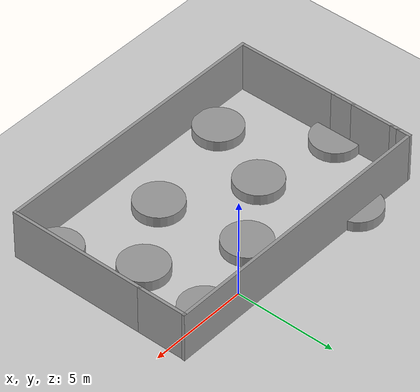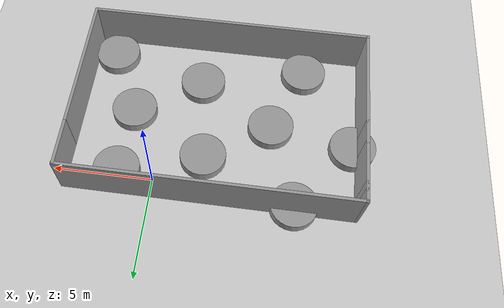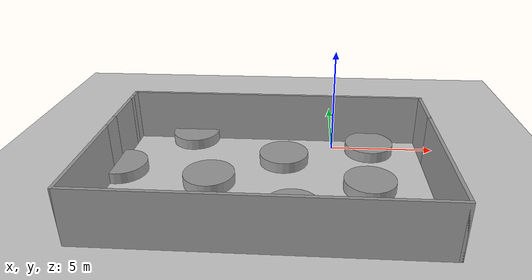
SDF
<sdf version="1.7">
 <world name="default">
  <scene><ambient>0.4 0.4 0.4 1</ambient><background>0.7 0.7 0.7 1</background><shadows>1</shadows></scene>
  <light name="sun" type="directional">
   <pose>0 0 10 0 -0 0</pose>
   <diffuse>0.8 0.8 0.8 1</diffuse>
   <specular>0.2 0.2 0.2 1</specular>
   <attenuation>
    <range>1000</range>
    <constant>0.9</constant>
    <linear>0.01</linear>
    <quadratic>0.001</quadratic>
   </attenuation>
   <direction>-0.5 0.1 -0.9</direction>
   <spot><inner_angle>0</inner_angle><outer_angle>0</outer_angle><falloff>0</falloff></spot>
  </light>
  <model name="ground_plane">
   <static>1</static>
   <link name="link">
    <collision name="collision">
     <geometry><plane><normal>0 0 1</normal><size>100 100</size></plane></geometry>
     <surface><friction><ode><mu>100</mu><mu2>50</mu2></ode></friction></surface>
    </collision>
    <visual name="visual">
     <cast_shadows>0</cast_shadows>
     <geometry><plane><normal>0 0 1</normal><size>100 100</size></plane></geometry>
     <material>
      <script><uri>file://media/materials/scripts/gazebo.material</uri><name>Gazebo/Grey</name></script>
     </material>
    </visual>
   </link>
  </model>
  <physics type="ode">
   <real_time_update_rate>0</real_time_update_rate>
   <max_step_size>0.001</max_step_size>
   <real_time_factor>1</real_time_factor>
   <ode>
    <solver>
     <type>quick</type>
     <iters>150</iters>
     <precon_iters>0</precon_iters>
     <sor>1.4</sor>
     <use_dynamic_moi_rescaling>1</use_dynamic_moi_rescaling>
    </solver>
    <constraints>
     <cfm>1e-05</cfm>
     <erp>0.2</erp>
     <contact_max_correcting_vel>2000</contact_max_correcting_vel>
     <contact_surface_layer>0.01</contact_surface_layer>
    </constraints>
   </ode>
  </physics>
  <gravity>0 0 -9.8</gravity>
  <magnetic_field>6e-06 2.3e-05 -4.2e-05</magnetic_field>
  <atmosphere type="adiabatic"/>
  <spherical_coordinates>
   <surface_model>EARTH_WGS84</surface_model>
   <latitude_deg>0</latitude_deg>
   <longitude_deg>0</longitude_deg>
   <elevation>0</elevation>
   <heading_deg>0</heading_deg>
  </spherical_coordinates>
  <model name="half_square">
   <pose>-2.87363 -3.76482 0 0 -0 0</pose>
   <link name="Wall_0">
    <collision name="Wall_0_Collision">
     <geometry><box><size>14.5 0.15 2.5</size></box></geometry>
     <pose>0 0 1.25 0 -0 0</pose>
    </collision>
    <visual name="Wall_0_Visual">
     <pose>0 0 1.25 0 -0 0</pose>
     <geometry><box><size>14.5 0.15 2.5</size></box></geometry>
     <material>
      <script><uri>file://media/materials/scripts/gazebo.material</uri><name>Gazebo/Grey</name></script>
      <ambient>1 1 1 1</ambient>
     </material>
     <meta><layer>0</layer></meta>
    </visual>
    <pose>-0.010056 -4.61503 0 0 -0 0</pose>
   </link>
   <link name="Wall_11">
    <collision name="Wall_11_Collision">
     <geometry><box><size>2.5 0.15 2.5</size></box></geometry>
     <pose>0 0 1.25 0 -0 0</pose>
    </collision>
    <visual name="Wall_11_Visual">
     <pose>0 0 1.25 0 -0 0</pose>
     <geometry><box><size>2.5 0.15 2.5</size></box></geometry>
     <material>
      <script><uri>file://media/materials/scripts/gazebo.material</uri><name>Gazebo/Grey</name></script>
      <ambient>1 1 1 1</ambient>
     </material>
     <meta><layer>0</layer></meta>
    </visual>
    <pose>7.16494 3.40997 0 0 -0 1.5708</pose>
   </link>
   <link name="Wall_13">
    <collision name="Wall_13_Collision">
     <geometry><box><size>0.730235 0.15 2.5</size></box></geometry>
     <pose>0 0 1.25 0 -0 0</pose>
    </collision>
    <visual name="Wall_13_Visual">
     <pose>0 0 1.25 0 -0 0</pose>
     <geometry><box><size>0.730235 0.15 2.5</size></box></geometry>
     <material>
      <script><uri>file://media/materials/scripts/gazebo.material</uri><name>Gazebo/Grey</name></script>
      <ambient>1 1 1 1</ambient>
     </material>
     <meta><layer>0</layer></meta>
    </visual>
    <pose>-7.18506 4.32491 0 0 -0 1.5708</pose>
   </link>
   <link name="Wall_14">
    <collision name="Wall_14_Collision">
     <geometry><box><size>14.5 0.15 2.5</size></box></geometry>
     <pose>0 0 1.25 0 -0 0</pose>
    </collision>
    <visual name="Wall_14_Visual">
     <pose>0 0 1.25 0 -0 0</pose>
     <geometry><box><size>14.5 0.15 2.5</size></box></geometry>
     <material>
      <script><uri>file://media/materials/scripts/gazebo.material</uri><name>Gazebo/Grey</name></script>
      <ambient>1 1 1 1</ambient>
     </material>
     <meta><layer>0</layer></meta>
    </visual>
    <pose>0.010057 4.61486 0 0 -0 0</pose>
   </link>
   <link name="Wall_2">
    <collision name="Wall_2_Collision">
     <geometry><box><size>5.25 0.15 2.5</size></box></geometry>
     <pose>0 0 1.25 0 -0 0</pose>
    </collision>
    <visual name="Wall_2_Visual">
     <pose>0 0 1.25 0 -0 0</pose>
     <geometry><box><size>5.25 0.15 2.5</size></box></geometry>
     <material>
      <script><uri>file://media/materials/scripts/gazebo.material</uri><name>Gazebo/Grey</name></script>
      <ambient>1 1 1 1</ambient>
     </material>
     <meta><layer>0</layer></meta>
    </visual>
    <pose>-7.18506 -2.06503 0 0 -0 1.5708</pose>
   </link>
   <link name="Wall_4">
    <collision name="Wall_4_Collision">
     <geometry><box><size>7 0.15 2.5</size></box></geometry>
     <pose>0 0 1.25 0 -0 0</pose>
    </collision>
    <visual name="Wall_4_Visual">
     <pose>0 0 1.25 0 -0 0</pose>
     <geometry><box><size>7 0.15 2.5</size></box></geometry>
     <material>
      <script><uri>file://media/materials/scripts/gazebo.material</uri><name>Gazebo/Grey</name></script>
      <ambient>1 1 1 1</ambient>
     </material>
     <meta><layer>0</layer></meta>
    </visual>
    <pose>7.16494 -1.19003 0 0 -0 1.5708</pose>
   </link>
   <link name="Wall_6">
    <collision name="Wall_6_Collision">
     <geometry><box><size>1.25 0.15 2.5</size></box></geometry>
     <pose>0 0 1.25 0 -0 0</pose>
    </collision>
    <visual name="Wall_6_Visual">
     <pose>0 0 1.25 0 -0 0</pose>
     <geometry><box><size>1.25 0.15 2.5</size></box></geometry>
     <material>
      <script><uri>file://media/materials/scripts/gazebo.material</uri><name>Gazebo/Grey</name></script>
      <ambient>1 1 1 1</ambient>
     </material>
     <meta><layer>0</layer></meta>
    </visual>
    <pose>-7.18506 1.03497 0 0 -0 1.5708</pose>
   </link>
   <link name="Wall_8">
    <collision name="Wall_8_Collision">
     <geometry><box><size>2.25 0.15 2.5</size></box></geometry>
     <pose>0 0 1.25 0 -0 0</pose>
    </collision>
    <visual name="Wall_8_Visual">
     <pose>0 0 1.25 0 -0 0</pose>
     <geometry><box><size>2.25 0.15 2.5</size></box></geometry>
     <material>
      <script><uri>file://media/materials/scripts/gazebo.material</uri><name>Gazebo/Grey</name></script>
      <ambient>1 1 1 1</ambient>
     </material>
     <meta><layer>0</layer></meta>
    </visual>
    <pose>-7.18506 2.63497 0 0 -0 1.5708</pose>
   </link>
   <link name="Wall_9">
    <collision name="Wall_9_Collision">
     <geometry><box><size>0.5 0.15 2.5</size></box></geometry>
     <pose>0 0 1.25 0 -0 0</pose>
    </collision>
    <visual name="Wall_9_Visual">
     <pose>0 0 1.25 0 -0 0</pose>
     <geometry><box><size>0.5 0.15 2.5</size></box></geometry>
     <material>
      <script><uri>file://media/materials/scripts/gazebo.material</uri><name>Gazebo/Grey</name></script>
      <ambient>1 1 1 1</ambient>
     </material>
     <meta><layer>0</layer></meta>
    </visual>
    <pose>-7.18506 3.85997 0 0 -0 1.5708</pose>
   </link>
   <static>1</static>
  </model>
  <plugin name="gazebo_occupancy_map" filename="libgazebo_2Dmap_plugin.so">
   <map_resolution>0.02</map_resolution>
   <map_height>0.7</map_height>
   <map_size_x>20</map_size_x>
   <map_size_y>20</map_size_y>
   <init_robot_x>0</init_robot_x>
   <init_robot_y>0</init_robot_y>
  </plugin>
  <model name="circles">
   <link name="link_0">
    <inertial>
     <mass>5.41875</mass>
     <inertia><ixx>2.28677</ixx><ixy>0</ixy><ixz>0</ixz><iyy>2.28677</iyy><iyz>0</iyz><izz>3.67041</izz></inertia>
    </inertial>
    <pose>-4.05525 -3.64745 0 0 -0 0</pose>
    <visual name="visual">
     <geometry><cylinder><radius>1.16392</radius><length>1</length></cylinder></geometry>
     <material>
      <lighting>1</lighting>
      <script><uri>file://media/materials/scripts/gazebo.material</uri><name>Gazebo/Grey</name></script>
      <shader type="pixel"/>
     </material>
    </visual>
    <collision name="collision">
     <geometry><cylinder><radius>1.16392</radius><length>1</length></cylinder></geometry>
     <surface>
      <friction>
       <ode><mu>1</mu><mu2>1</mu2><fdir1>0 0 0</fdir1><slip1>0</slip1><slip2>0</slip2></ode>
       <torsional>
        <coefficient>1</coefficient>
        <patch_radius>0</patch_radius>
        <surface_radius>0</surface_radius>
        <use_patch_radius>1</use_patch_radius>
        <ode><slip>0</slip></ode>
       </torsional>
      </friction>
      <bounce><restitution_coefficient>0</restitution_coefficient><threshold>1e+06</threshold></bounce>
      <contact>
       <collide_without_contact>0</collide_without_contact>
       <collide_without_contact_bitmask>1</collide_without_contact_bitmask>
       <collide_bitmask>1</collide_bitmask>
       <ode>
        <soft_cfm>0</soft_cfm>
        <soft_erp>0.2</soft_erp>
        <kp>1e+13</kp>
        <kd>1</kd>
        <max_vel>0.01</max_vel>
        <min_depth>0</min_depth>
       </ode>
       <bullet>
        <split_impulse>1</split_impulse>
        <split_impulse_penetration_threshold>-0.01</split_impulse_penetration_threshold>
        <soft_cfm>0</soft_cfm>
        <soft_erp>0.2</soft_erp>
        <kp>1e+13</kp>
        <kd>1</kd>
       </bullet>
      </contact>
     </surface>
    </collision>
   </link>
   <link name="link_0_clone">
    <inertial>
     <mass>5.41875</mass>
     <inertia><ixx>2.28677</ixx><ixy>0</ixy><ixz>0</ixz><iyy>2.28677</iyy><iyz>0</iyz><izz>3.67041</izz></inertia>
    </inertial>
    <pose>-6.77005 0.641672 0 0 -0 0</pose>
    <visual name="visual">
     <geometry><cylinder><radius>1.16392</radius><length>1</length></cylinder></geometry>
     <material>
      <lighting>1</lighting>
      <script><uri>file://media/materials/scripts/gazebo.material</uri><name>Gazebo/Grey</name></script>
      <shader type="pixel"/>
     </material>
    </visual>
    <collision name="collision">
     <geometry><cylinder><radius>1.16392</radius><length>1</length></cylinder></geometry>
     <surface>
      <friction>
       <ode><mu>1</mu><mu2>1</mu2><fdir1>0 0 0</fdir1><slip1>0</slip1><slip2>0</slip2></ode>
       <torsional>
        <coefficient>1</coefficient>
        <patch_radius>0</patch_radius>
        <surface_radius>0</surface_radius>
        <use_patch_radius>1</use_patch_radius>
        <ode><slip>0</slip></ode>
       </torsional>
      </friction>
      <bounce><restitution_coefficient>0</restitution_coefficient><threshold>1e+06</threshold></bounce>
      <contact>
       <collide_without_contact>0</collide_without_contact>
       <collide_without_contact_bitmask>1</collide_without_contact_bitmask>
       <collide_bitmask>1</collide_bitmask>
       <ode>
        <soft_cfm>0</soft_cfm>
        <soft_erp>0.2</soft_erp>
        <kp>1e+13</kp>
        <kd>1</kd>
        <max_vel>0.01</max_vel>
        <min_depth>0</min_depth>
       </ode>
       <bullet>
        <split_impulse>1</split_impulse>
        <split_impulse_penetration_threshold>-0.01</split_impulse_penetration_threshold>
        <soft_cfm>0</soft_cfm>
        <soft_erp>0.2</soft_erp>
        <kp>1e+13</kp>
        <kd>1</kd>
       </bullet>
      </contact>
     </surface>
    </collision>
   </link>
   <link name="link_0_clone_0">
    <inertial>
     <mass>5.41875</mass>
     <inertia><ixx>2.28677</ixx><ixy>0</ixy><ixz>0</ixz><iyy>2.28677</iyy><iyz>0</iyz><izz>3.67041</izz></inertia>
    </inertial>
    <pose>-2.5711 -0.10795 0 0 -0 0</pose>
    <visual name="visual">
     <geometry><cylinder><radius>1.16392</radius><length>1</length></cylinder></geometry>
     <material>
      <lighting>1</lighting>
      <script><uri>file://media/materials/scripts/gazebo.material</uri><name>Gazebo/Grey</name></script>
      <shader type="pixel"/>
     </material>
    </visual>
    <collision name="collision">
     <geometry><cylinder><radius>1.16392</radius><length>1</length></cylinder></geometry>
     <surface>
      <friction>
       <ode><mu>1</mu><mu2>1</mu2><fdir1>0 0 0</fdir1><slip1>0</slip1><slip2>0</slip2></ode>
       <torsional>
        <coefficient>1</coefficient>
        <patch_radius>0</patch_radius>
        <surface_radius>0</surface_radius>
        <use_patch_radius>1</use_patch_radius>
        <ode><slip>0</slip></ode>
       </torsional>
      </friction>
      <bounce><restitution_coefficient>0</restitution_coefficient><threshold>1e+06</threshold></bounce>
      <contact>
       <collide_without_contact>0</collide_without_contact>
       <collide_without_contact_bitmask>1</collide_without_contact_bitmask>
       <collide_bitmask>1</collide_bitmask>
       <ode>
        <soft_cfm>0</soft_cfm>
        <soft_erp>0.2</soft_erp>
        <kp>1e+13</kp>
        <kd>1</kd>
        <max_vel>0.01</max_vel>
        <min_depth>0</min_depth>
       </ode>
       <bullet>
        <split_impulse>1</split_impulse>
        <split_impulse_penetration_threshold>-0.01</split_impulse_penetration_threshold>
        <soft_cfm>0</soft_cfm>
        <soft_erp>0.2</soft_erp>
        <kp>1e+13</kp>
        <kd>1</kd>
       </bullet>
      </contact>
     </surface>
    </collision>
   </link>
   <link name="link_0_clone_1">
    <inertial>
     <mass>5.41875</mass>
     <inertia><ixx>2.28677</ixx><ixy>0</ixy><ixz>0</ixz><iyy>2.28677</iyy><iyz>0</iyz><izz>3.67041</izz></inertia>
    </inertial>
    <pose>-4.01752 4.124 0 0 -0 0</pose>
    <visual name="visual">
     <geometry><cylinder><radius>1.16392</radius><length>1</length></cylinder></geometry>
     <material>
      <lighting>1</lighting>
      <script><uri>file://media/materials/scripts/gazebo.material</uri><name>Gazebo/Grey</name></script>
      <shader type="pixel"/>
     </material>
    </visual>
    <collision name="collision">
     <geometry><cylinder><radius>1.16392</radius><length>1</length></cylinder></geometry>
     <surface>
      <friction>
       <ode><mu>1</mu><mu2>1</mu2><fdir1>0 0 0</fdir1><slip1>0</slip1><slip2>0</slip2></ode>
       <torsional>
        <coefficient>1</coefficient>
        <patch_radius>0</patch_radius>
        <surface_radius>0</surface_radius>
        <use_patch_radius>1</use_patch_radius>
        <ode><slip>0</slip></ode>
       </torsional>
      </friction>
      <bounce><restitution_coefficient>0</restitution_coefficient><threshold>1e+06</threshold></bounce>
      <contact>
       <collide_without_contact>0</collide_without_contact>
       <collide_without_contact_bitmask>1</collide_without_contact_bitmask>
       <collide_bitmask>1</collide_bitmask>
       <ode>
        <soft_cfm>0</soft_cfm>
        <soft_erp>0.2</soft_erp>
        <kp>1e+13</kp>
        <kd>1</kd>
        <max_vel>0.01</max_vel>
        <min_depth>0</min_depth>
       </ode>
       <bullet>
        <split_impulse>1</split_impulse>
        <split_impulse_penetration_threshold>-0.01</split_impulse_penetration_threshold>
        <soft_cfm>0</soft_cfm>
        <soft_erp>0.2</soft_erp>
        <kp>1e+13</kp>
        <kd>1</kd>
       </bullet>
      </contact>
     </surface>
    </collision>
   </link>
   <link name="link_0_clone_2">
    <inertial>
     <mass>5.41875</mass>
     <inertia><ixx>2.28677</ixx><ixy>0</ixy><ixz>0</ixz><iyy>2.28677</iyy><iyz>0</iyz><izz>3.67041</izz></inertia>
    </inertial>
    <pose>1.23567 -2.38471 0 0 -0 0</pose>
    <visual name="visual">
     <geometry><cylinder><radius>1.16392</radius><length>1</length></cylinder></geometry>
     <material>
      <lighting>1</lighting>
      <script><uri>file://media/materials/scripts/gazebo.material</uri><name>Gazebo/Grey</name></script>
      <shader type="pixel"/>
     </material>
    </visual>
    <collision name="collision">
     <geometry><cylinder><radius>1.16392</radius><length>1</length></cylinder></geometry>
     <surface>
      <friction>
       <ode><mu>1</mu><mu2>1</mu2><fdir1>0 0 0</fdir1><slip1>0</slip1><slip2>0</slip2></ode>
       <torsional>
        <coefficient>1</coefficient>
        <patch_radius>0</patch_radius>
        <surface_radius>0</surface_radius>
        <use_patch_radius>1</use_patch_radius>
        <ode><slip>0</slip></ode>
       </torsional>
      </friction>
      <bounce><restitution_coefficient>0</restitution_coefficient><threshold>1e+06</threshold></bounce>
      <contact>
       <collide_without_contact>0</collide_without_contact>
       <collide_without_contact_bitmask>1</collide_without_contact_bitmask>
       <collide_bitmask>1</collide_bitmask>
       <ode>
        <soft_cfm>0</soft_cfm>
        <soft_erp>0.2</soft_erp>
        <kp>1e+13</kp>
        <kd>1</kd>
        <max_vel>0.01</max_vel>
        <min_depth>0</min_depth>
       </ode>
       <bullet>
        <split_impulse>1</split_impulse>
        <split_impulse_penetration_threshold>-0.01</split_impulse_penetration_threshold>
        <soft_cfm>0</soft_cfm>
        <soft_erp>0.2</soft_erp>
        <kp>1e+13</kp>
        <kd>1</kd>
       </bullet>
      </contact>
     </surface>
    </collision>
   </link>
   <link name="link_0_clone_3">
    <inertial>
     <mass>5.41875</mass>
     <inertia><ixx>2.28677</ixx><ixy>0</ixy><ixz>0</ixz><iyy>2.28677</iyy><iyz>0</iyz><izz>3.67041</izz></inertia>
    </inertial>
    <pose>6.12867 -3.66477 0 0 -0 0</pose>
    <visual name="visual">
     <geometry><cylinder><radius>1.16392</radius><length>1</length></cylinder></geometry>
     <material>
      <lighting>1</lighting>
      <script><uri>file://media/materials/scripts/gazebo.material</uri><name>Gazebo/Grey</name></script>
      <shader type="pixel"/>
     </material>
    </visual>
    <collision name="collision">
     <geometry><cylinder><radius>1.16392</radius><length>1</length></cylinder></geometry>
     <surface>
      <friction>
       <ode><mu>1</mu><mu2>1</mu2><fdir1>0 0 0</fdir1><slip1>0</slip1><slip2>0</slip2></ode>
       <torsional>
        <coefficient>1</coefficient>
        <patch_radius>0</patch_radius>
        <surface_radius>0</surface_radius>
        <use_patch_radius>1</use_patch_radius>
        <ode><slip>0</slip></ode>
       </torsional>
      </friction>
      <bounce><restitution_coefficient>0</restitution_coefficient><threshold>1e+06</threshold></bounce>
      <contact>
       <collide_without_contact>0</collide_without_contact>
       <collide_without_contact_bitmask>1</collide_without_contact_bitmask>
       <collide_bitmask>1</collide_bitmask>
       <ode>
        <soft_cfm>0</soft_cfm>
        <soft_erp>0.2</soft_erp>
        <kp>1e+13</kp>
        <kd>1</kd>
        <max_vel>0.01</max_vel>
        <min_depth>0</min_depth>
       </ode>
       <bullet>
        <split_impulse>1</split_impulse>
        <split_impulse_penetration_threshold>-0.01</split_impulse_penetration_threshold>
        <soft_cfm>0</soft_cfm>
        <soft_erp>0.2</soft_erp>
        <kp>1e+13</kp>
        <kd>1</kd>
       </bullet>
      </contact>
     </surface>
    </collision>
   </link>
   <link name="link_0_clone_4">
    <inertial>
     <mass>5.41875</mass>
     <inertia><ixx>2.28677</ixx><ixy>0</ixy><ixz>0</ixz><iyy>2.28677</iyy><iyz>0</iyz><izz>3.67041</izz></inertia>
    </inertial>
    <pose>4.56541 -0.254635 0 0 -0 0</pose>
    <visual name="visual">
     <geometry><cylinder><radius>1.16392</radius><length>1</length></cylinder></geometry>
     <material>
      <lighting>1</lighting>
      <script><uri>file://media/materials/scripts/gazebo.material</uri><name>Gazebo/Grey</name></script>
      <shader type="pixel"/>
     </material>
    </visual>
    <collision name="collision">
     <geometry><cylinder><radius>1.16392</radius><length>1</length></cylinder></geometry>
     <surface>
      <friction>
       <ode><mu>1</mu><mu2>1</mu2><fdir1>0 0 0</fdir1><slip1>0</slip1><slip2>0</slip2></ode>
       <torsional>
        <coefficient>1</coefficient>
        <patch_radius>0</patch_radius>
        <surface_radius>0</surface_radius>
        <use_patch_radius>1</use_patch_radius>
        <ode><slip>0</slip></ode>
       </torsional>
      </friction>
      <bounce><restitution_coefficient>0</restitution_coefficient><threshold>1e+06</threshold></bounce>
      <contact>
       <collide_without_contact>0</collide_without_contact>
       <collide_without_contact_bitmask>1</collide_without_contact_bitmask>
       <collide_bitmask>1</collide_bitmask>
       <ode>
        <soft_cfm>0</soft_cfm>
        <soft_erp>0.2</soft_erp>
        <kp>1e+13</kp>
        <kd>1</kd>
        <max_vel>0.01</max_vel>
        <min_depth>0</min_depth>
       </ode>
       <bullet>
        <split_impulse>1</split_impulse>
        <split_impulse_penetration_threshold>-0.01</split_impulse_penetration_threshold>
        <soft_cfm>0</soft_cfm>
        <soft_erp>0.2</soft_erp>
        <kp>1e+13</kp>
        <kd>1</kd>
       </bullet>
      </contact>
     </surface>
    </collision>
   </link>
   <link name="link_0_clone_5">
    <inertial>
     <mass>5.41875</mass>
     <inertia><ixx>2.28677</ixx><ixy>0</ixy><ixz>0</ixz><iyy>2.28677</iyy><iyz>0</iyz><izz>3.67041</izz></inertia>
    </inertial>
    <pose>4.82029 3.27372 0 0 -0 0</pose>
    <visual name="visual">
     <geometry><cylinder><radius>1.16392</radius><length>1</length></cylinder></geometry>
     <material>
      <lighting>1</lighting>
      <script><uri>file://media/materials/scripts/gazebo.material</uri><name>Gazebo/Grey</name></script>
      <shader type="pixel"/>
     </material>
    </visual>
    <collision name="collision">
     <geometry><cylinder><radius>1.16392</radius><length>1</length></cylinder></geometry>
     <surface>
      <friction>
       <ode><mu>1</mu><mu2>1</mu2><fdir1>0 0 0</fdir1><slip1>0</slip1><slip2>0</slip2></ode>
       <torsional>
        <coefficient>1</coefficient>
        <patch_radius>0</patch_radius>
        <surface_radius>0</surface_radius>
        <use_patch_radius>1</use_patch_radius>
        <ode><slip>0</slip></ode>
       </torsional>
      </friction>
      <bounce><restitution_coefficient>0</restitution_coefficient><threshold>1e+06</threshold></bounce>
      <contact>
       <collide_without_contact>0</collide_without_contact>
       <collide_without_contact_bitmask>1</collide_without_contact_bitmask>
       <collide_bitmask>1</collide_bitmask>
       <ode>
        <soft_cfm>0</soft_cfm>
        <soft_erp>0.2</soft_erp>
        <kp>1e+13</kp>
        <kd>1</kd>
        <max_vel>0.01</max_vel>
        <min_depth>0</min_depth>
       </ode>
       <bullet>
        <split_impulse>1</split_impulse>
        <split_impulse_penetration_threshold>-0.01</split_impulse_penetration_threshold>
        <soft_cfm>0</soft_cfm>
        <soft_erp>0.2</soft_erp>
        <kp>1e+13</kp>
        <kd>1</kd>
       </bullet>
      </contact>
     </surface>
    </collision>
   </link>
   <link name="link_0_clone_6">
    <inertial>
     <mass>5.41875</mass>
     <inertia><ixx>2.28677</ixx><ixy>0</ixy><ixz>0</ixz><iyy>2.28677</iyy><iyz>0</iyz><izz>3.67041</izz></inertia>
    </inertial>
    <pose>0.663889 2.02012 0 0 -0 0</pose>
    <visual name="visual">
     <geometry><cylinder><radius>1.16392</radius><length>1</length></cylinder></geometry>
     <material>
      <lighting>1</lighting>
      <script><uri>file://media/materials/scripts/gazebo.material</uri><name>Gazebo/Grey</name></script>
      <shader type="pixel"/>
     </material>
    </visual>
    <collision name="collision">
     <geometry><cylinder><radius>1.16392</radius><length>1</length></cylinder></geometry>
     <surface>
      <friction>
       <ode><mu>1</mu><mu2>1</mu2><fdir1>0 0 0</fdir1><slip1>0</slip1><slip2>0</slip2></ode>
       <torsional>
        <coefficient>1</coefficient>
        <patch_radius>0</patch_radius>
        <surface_radius>0</surface_radius>
        <use_patch_radius>1</use_patch_radius>
        <ode><slip>0</slip></ode>
       </torsional>
      </friction>
      <bounce><restitution_coefficient>0</restitution_coefficient><threshold>1e+06</threshold></bounce>
      <contact>
       <collide_without_contact>0</collide_without_contact>
       <collide_without_contact_bitmask>1</collide_without_contact_bitmask>
       <collide_bitmask>1</collide_bitmask>
       <ode>
        <soft_cfm>0</soft_cfm>
        <soft_erp>0.2</soft_erp>
        <kp>1e+13</kp>
        <kd>1</kd>
        <max_vel>0.01</max_vel>
        <min_depth>0</min_depth>
       </ode>
       <bullet>
        <split_impulse>1</split_impulse>
        <split_impulse_penetration_threshold>-0.01</split_impulse_penetration_threshold>
        <soft_cfm>0</soft_cfm>
        <soft_erp>0.2</soft_erp>
        <kp>1e+13</kp>
        <kd>1</kd>
       </bullet>
      </contact>
     </surface>
    </collision>
   </link>
   <static>1</static>
   <pose>-3.00653 -3.53878 0 0 -0 0</pose>
  </model>
  <plugin name="gazebo_occupancy_map" filename="libgazebo_2Dmap_plugin.so">
   <map_resolution>0.02</map_resolution>
   <map_height>0.7</map_height>
   <map_size_x>20</map_size_x>
   <map_size_y>20</map_size_y>
   <init_robot_x>0</init_robot_x>
   <init_robot_y>0</init_robot_y>
  </plugin>
 </world>
</sdf>
